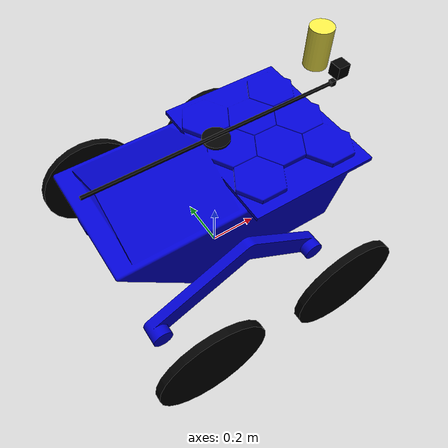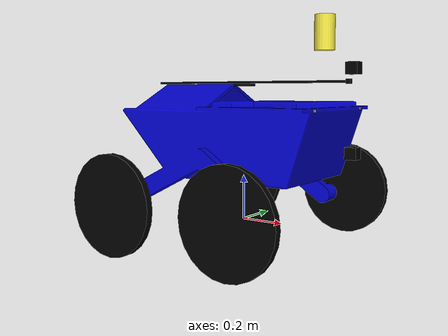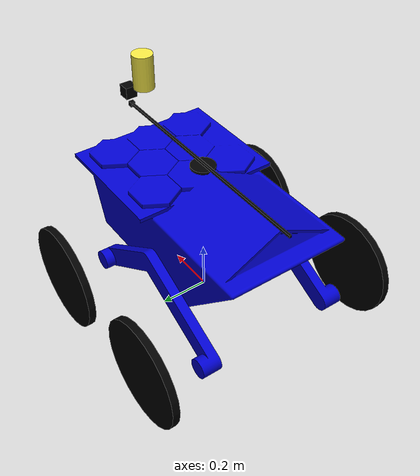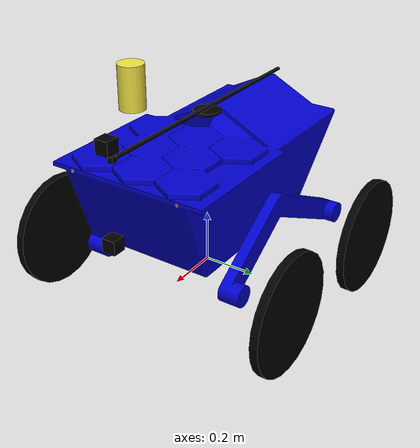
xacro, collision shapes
<?xml version="1.0"?>
<robot xmlns:xacro="http://www.ros.org/wiki/xacro" name="arctic_model" >
  <xacro:include filename="$(find hector_sensors_description)/urdf/sonar_sensor.urdf.xacro"/>
  <xacro:property name="base_len" value="1.039"/>
  <xacro:property name="base_shift" value="0.20"/>
  <xacro:property name="base_w" value="0.8"/>
  <xacro:property name="base_h" value="0.685"/>
  <xacro:property name="base_r" value="0.2"/>
  <xacro:property name="wheel_r" value="0.22"/>
  <xacro:property name="wheel_h" value="0.03"/>
  <xacro:property name="wheel_dist_y" value="1."/>
  <xacro:property name="wheel_dist_x" value="0.6"/>
  <xacro:property name="dh" value="0.14"/>
  <xacro:property name="dl" value="0.553"/>
  <xacro:property name="sonar_shift" value="0.05"/>
  <xacro:property name="sonar_dist" value="0.42"/>
  <xacro:property name="wheel_rho" value="100"/>
  <xacro:property name="robot_rho" value="1000"/>
  <xacro:property name="wheel_friction" value="0.3"/>
  <xacro:property name="cam_pan_h" value="0.3"/>
  <gazebo reference="base_link">
    <mu1>0</mu1>
    <mu2>0</mu2>
  </gazebo>

  <link name="base_link" />

  <joint name="zero_joint" type="fixed">
    <parent link="base_link"/>
    <child link="body_link"/>
     <origin xyz="${base_len/2 - dl} 0 ${base_h/2 - dh}" rpy="0 0 0"/>
  </joint>
  <link name="body_link">
    <visual>
      <geometry>
        <mesh filename="file://$(find arctic_model_description)/meshes/PlatformV3.dae"/>
      </geometry>
      <origin xyz="0 0 0" rpy="0 0 ${pi/2}"/>

      <material name="blue">
	    <color rgba="0 0 .8 1"/>
      </material>

    </visual>
    <collision>
      <geometry>
        <mesh filename="file://$(find arctic_model_description)/meshes/PlatformV3.dae"/>
      </geometry>
      <origin xyz="0 0 0" rpy="0 0 ${pi/2}"/>
    </collision>
    <inertial>
      <mass value="${robot_rho*base_len*base_w*base_h}"/>
      <inertia ixx="${1/12*robot_rho*base_len*base_w*base_h*(base_w*base_w + base_h*base_h)}" ixy="0.0" ixz="0.0" iyy="${1/12*robot_rho*base_len*base_w*base_h*(base_len*base_len + base_h*base_h)}" iyz="0.0" izz="${1/12*robot_rho*base_len*base_w*base_h*(base_w*base_w + base_len*base_len)}"/>
    </inertial>
  </link>

  <gazebo reference="body_link">
     <material>Gazebo/Blue</material>
     <mu1>0</mu1>
     <mu2>0</mu2>
  </gazebo>

  <xacro:macro name="wheel" params="wh_name base_name dx dy">
    <link name="${wh_name}_link">
      <visual>
        <geometry>
          <cylinder length="${2*wheel_h}" radius="${wheel_r}"/>
        </geometry>
        <origin rpy="${pi/2} 0 0" xyz="0 0 0"/>
        <material name="black">
	  <color rgba="0 0 0 1"/>
        </material>
      </visual>
      <collision>
        <geometry>
          <cylinder length="${wheel_h}" radius="${wheel_r}"/>
        </geometry>
        <origin rpy="${pi/2} 0 0" xyz="0 0 0"/>
      </collision>
      <inertial>
        <mass value="${wheel_rho*pi*wheel_r*wheel_r*wheel_h}"/>
        <inertia izz="${0.25*wheel_rho*pi*wheel_r*wheel_r*wheel_h*wheel_r*wheel_r + 1/12*wheel_rho*pi*wheel_r*wheel_r*wheel_h*wheel_h*wheel_h}" ixy="0.0" ixz="0.0" ixx="${0.25*wheel_rho*pi*wheel_r*wheel_r*wheel_h*wheel_r*wheel_r + 1/12*wheel_rho*pi*wheel_r*wheel_r*wheel_h*wheel_h*wheel_h}" iyz="0.0" iyy="${0.5*wheel_rho*pi*wheel_r*wheel_r*wheel_h*wheel_r*wheel_r}"/>
      </inertial>
    </link>
    <joint name="${wh_name}_j" type="continuous">
      <origin xyz="${dx} ${dy} -0.1" rpy="0 0 0"/>
      <parent link="${base_name}"/>
      <axis xyz="0 1 0"/>
      <child link="${wh_name}_link"/>
      <dynamics damping="${wheel_friction}"/>
    </joint>
    <gazebo reference="${wh_name}_link">
      <material>Gazebo/Black</material>
      <mu1>1</mu1>
      <dampingFactor>0.05</dampingFactor>
      <kp>20000000</kp>
      <kd>800000</kd>
    </gazebo>
  </xacro:macro>

  <xacro:wheel wh_name="lwheel" base_name="body_link" dx="${wheel_dist_x/2}" dy="${wheel_dist_y/2}"  />
  <xacro:wheel wh_name="rwheel" base_name="body_link" dx="${wheel_dist_x/2}" dy="${-wheel_dist_y/2}"  />
  <xacro:wheel wh_name="lwheel3" base_name="body_link" dx="${-wheel_dist_x/2}" dy="${wheel_dist_y/2}" />
  <xacro:wheel wh_name="rwheel3" base_name="body_link" dx="${-wheel_dist_x/2}" dy="${-wheel_dist_y/2}" />

  <xacro:macro name="sonar" params="sonar_name base_name dx dy">
    <xacro:sonar_sensor name='${sonar_name}' parent='${base_name}' ros_topic='/sonar' update_rate='5' min_range='0.01' max_range='5' field_of_view='${pi/12}' ray_count='1'>
      <origin xyz='${dx+0.25} ${dy} 0.305' rpy='0 0 0'/>
    </xacro:sonar_sensor>
  </xacro:macro>

  <xacro:sonar sonar_name="arctic_model_left_rf" base_name="body_link" dx="${base_shift+sonar_shift}" dy="${sonar_dist/2}" />
  <xacro:sonar sonar_name="arctic_model_right_rf" base_name="body_link" dx="${base_shift+sonar_shift}" dy="${-sonar_dist/2}" />

  <xacro:macro name="whtransmission" params="joint">
    <transmission name="${joint}_transm">
      <type>transmission_interface/SimpleTransmission</type>
      <joint name="${joint}">
        <hardwareInterface>hardware_interface/VelocityJointInterface</hardwareInterface>
      </joint>
      <actuator name="${joint}_motor">
        <mechanicalReduction>1</mechanicalReduction>
      </actuator>
    </transmission>
  </xacro:macro>

  <xacro:whtransmission joint="rwheel_j" />
  <xacro:whtransmission joint="lwheel_j" />
  <xacro:whtransmission joint="rwheel3_j" />
  <xacro:whtransmission joint="lwheel3_j" />

  <xacro:arg name="gpu" default="false"/>
  <xacro:property name="gpu" value="$(arg gpu)" />

  <!-- manipulator -->

  <link name="manip_base_link">
      <visual>
        <geometry>
          <cylinder length="0.01" radius="0.05"/>
        </geometry>
        <origin rpy="0 0 0" xyz="0 0 0"/>
        <material name="black">
	  <color rgba="0 0 0 1"/>
        </material>
      </visual>
      <collision>
        <geometry>
          <cylinder length="0.01" radius="0.05"/>
        </geometry>
        <origin rpy="0 0 0" xyz="0 0 0"/>
      </collision>
      <inertial>
        <mass value="0.01"/>
        <inertia izz="1e-4" ixy="0.0" ixz="0.0" ixx="1e-4" iyz="0.0" iyy="1e-4"/>
      </inertial>
    </link>
    <joint name="manip_base_link_j" type="continuous">
      <origin xyz="0 0 0.61" rpy="0 0 0"/>
      <parent link="base_link"/>
      <axis xyz="0 0 1"/>
      <child link="manip_base_link"/>
      <dynamics damping="${wheel_friction}"/>
      <limit effort="10" velocity="10.0" />
    </joint>
    <transmission name="manip_base_link_transm">
      <type>transmission_interface/SimpleTransmission</type>
      <joint name="manip_base_link_j">
        <hardwareInterface>hardware_interface/PositionJointInterface</hardwareInterface>
      </joint>
      <actuator name="manip_base_link_motor">
        <mechanicalReduction>1</mechanicalReduction>
      </actuator>
    </transmission>

     <link name="manip_stock_link">
      <visual>
        <geometry>
          <box size="1 0.01 0.01"/>
        </geometry>
        <origin rpy="0 0 0" xyz="0 0 0"/>
        <material name="black">
	  <color rgba="0 0 0 1"/>
        </material>
      </visual>
      <collision>
        <geometry>
          <box size="1 0.01 0.01"/>
        </geometry>
        <origin rpy="0 0 0" xyz="0 0 0"/>
      </collision>
      <inertial>
        <mass value="0.01"/>
        <inertia izz="1e-4" ixy="0.0" ixz="0.0" ixx="1e-4" iyz="0.0" iyy="1e-4"/>
      </inertial>
    </link>
    <joint name="manip_stock_link_j" type="prismatic">
      <origin xyz="0 0 0.012" rpy="0 0 0"/>
      <parent link="manip_base_link"/>
      <axis xyz="1 0 0"/>
      <child link="manip_stock_link"/>
      <dynamics damping="${wheel_friction}"/>
      <limit effort="10" velocity="10.0" lower="-0.01" upper="0.49" />
    </joint>
    <transmission name="manip_stock_link_transm">
      <type>transmission_interface/SimpleTransmission</type>
      <joint name="manip_stock_link_j">
        <hardwareInterface>hardware_interface/PositionJointInterface</hardwareInterface>
      </joint>
      <actuator name="manip_stock_link_motor">
        <mechanicalReduction>1</mechanicalReduction>
      </actuator>
    </transmission>

    <link name="manip_end_link">
      <visual>
        <geometry>
          <!--box size="0.02 0.02 0.02"/-->
          <mesh filename="file://$(find arctic_model_description)/meshes/manip_end.dae"/>
        </geometry>
        <origin rpy="0 0 0" xyz="0 0 0"/>
        <material name="black">
	  <color rgba="0 0 0 1"/>
        </material>
      </visual>
      <collision>
        <geometry>
          <box size="0.02 0.02 0.02"/>
        </geometry>
        <origin rpy="0 0 0" xyz="0 0 0"/>
      </collision>
      <inertial>
        <mass value="0.01"/>
        <inertia izz="1e-4" ixy="0.0" ixz="0.0" ixx="1e-4" iyz="0.0" iyy="1e-4"/>
      </inertial>
    </link>
    <joint name="manip_end_link_j" type="fixed">
      <origin xyz="0.51 0 0" rpy="0 0 0"/>
      <parent link="manip_stock_link"/>
      <axis xyz="1 0 0"/>
      <child link="manip_end_link"/>
    </joint>

  <!-- =============== LIDAR =================== -->
  <!-- LIDAR velodyne VLP-16 -->
  <!-- LIDAR velodyne HDL-32 -->
  <xacro:include filename="$(find velodyne_description)/urdf/HDL-32E.urdf.xacro"/>
  <xacro:HDL-32E parent="base_link" name="/default_robot/velodyne2" topic="velodyne_points2" hz="10" samples="220" gpu="${gpu}">
    <origin xyz="${base_shift*2} 0 0.75" rpy="0 0 0" />
  </xacro:HDL-32E>

  <!-- =============== CAMERAS =================== -->

  <link name="camera_link1">
    <visual>
      <geometry>
        <box size="0.05 0.05 0.05"/>
      </geometry>
      <origin rpy="0 0 0" xyz="0 0 0"/>
      <material name="black">
        <color rgba="0 0 0 1"/>
      </material>
    </visual>
    <collision>
      <geometry>
        <box size="0.05 0.05 0.05"/>
      </geometry>
      <origin rpy="0 0 0" xyz="0 0 0"/>
    </collision>
    <inertial>
      <mass value="0.001"/>
      <inertia ixx="1e-12" ixy="0.0" ixz="0.0" iyy="1e-12" iyz="0.0" izz="1e-12"/>
    </inertial>
  </link>

  <joint name="$camera_j1" type="fixed">
    <origin xyz="${base_shift+0.33} 0 ${base_h/2-0.01}" rpy="0 0 0"/>
    <parent link="base_link"/>
    <axis xyz="0 1 0"/>
    <child link="camera_link1"/>
  </joint>

  <gazebo reference="camera_link1">
    <material>Gazebo/Black</material>
    <sensor type="camera" name="camera1">
      <update_rate>30.0</update_rate>
      <camera name="head">
        <horizontal_fov>1.3962634</horizontal_fov>
        <image>
          <width>640</width>
          <height>480</height>
          <format>R8G8B8</format>
        </image>
        <clip>
          <near>0.02</near>
          <far>300</far>
        </clip>
        <noise>
          <type>gaussian</type>
          <!-- Noise is sampled independently per pixel on each frame.
               That pixel's noise value is added to each of its color
               channels, which at that point lie in the range [0,1]. -->
          <mean>0.0</mean>
          <stddev>0.007</stddev>
        </noise>
      </camera>
      <plugin name="camera_controller" filename="libgazebo_ros_camera.so">
        <alwaysOn>true</alwaysOn>
        <updateRate>0.0</updateRate>
        <cameraName>camera1</cameraName>
        <imageTopicName>image_raw</imageTopicName>
        <cameraInfoTopicName>camera_info</cameraInfoTopicName>
        <frameName>camera_link1</frameName>
        <hackBaseline>0.07</hackBaseline>
        <distortionK1>0.0</distortionK1>
        <distortionK2>0.0</distortionK2>
        <distortionK3>0.0</distortionK3>
        <distortionT1>0.0</distortionT1>
        <distortionT2>0.0</distortionT2>
      </plugin>
    </sensor>
  </gazebo>

  <link name="rotating_camera_mid_link">
    <inertial>
      <mass value="0.001"/>
      <inertia ixx="1e-12" ixy="0.0" ixz="0.0" iyy="1e-12" iyz="0.0" izz="1e-12"/>
    </inertial>
  </link>

  <joint name="rotating_camera_yaw_j" type="revolute">
    <origin xyz="${base_shift+0.33} 0 ${base_h-0.01}" rpy="0 0 0"/>
    <parent link="base_link"/>
    <axis xyz="0 0 1"/>
    <child link="rotating_camera_mid_link"/>
    <dynamics damping="${wheel_friction}"/>
    <limit lower="${-pi}" upper="${pi}" effort="1" velocity="5"/>
  </joint>

  <transmission name="rotating_camera_yaw_transm">
    <type>transmission_interface/SimpleTransmission</type>
    <joint name="rotating_camera_yaw_j">
      <hardwareInterface>hardware_interface/PositionJointInterface</hardwareInterface>
    </joint>
    <actuator name="rotating_camera_yaw_motor">
      <mechanicalReduction>1</mechanicalReduction>
    </actuator>
  </transmission>

  <link name="rotating_camera_link">
    <visual>
      <geometry>
        <box size="0.05 0.05 0.05"/>
      </geometry>
      <origin rpy="0 0 0" xyz="0 0 0"/>
      <material name="black">
        <color rgba="0 0 0 1"/>
      </material>
    </visual>
    <collision>
      <geometry>
        <box size="0.05 0.05 0.05"/>
      </geometry>
      <origin rpy="0 0 0" xyz="0 0 0"/>
    </collision>
    <inertial>
      <mass value="0.001"/>
      <inertia ixx="1e-12" ixy="0.0" ixz="0.0" iyy="1e-12" iyz="0.0" izz="1e-12"/>
    </inertial>
  </link>

  <joint name="rotating_camera_pitch_j" type="revolute">
    <origin xyz="0 0 0" rpy="0 0 0"/>
    <parent link="rotating_camera_mid_link"/>
    <axis xyz="0 1 0"/>
    <child link="rotating_camera_link"/>
    <dynamics damping="${wheel_friction}"/>
    <limit lower="${-pi}" upper="${pi}" effort="1" velocity="5"/>
  </joint>

  <transmission name="rotating_camera_pitch_transm">
    <type>transmission_interface/SimpleTransmission</type>
    <joint name="rotating_camera_pitch_j">
      <hardwareInterface>hardware_interface/PositionJointInterface</hardwareInterface>
    </joint>
    <actuator name="rotating_camera_pitch_motor">
      <mechanicalReduction>1</mechanicalReduction>
    </actuator>
  </transmission>

  <gazebo reference="rotating_camera_link">
    <material>Gazebo/Black</material>
    <sensor type="camera" name="rotating_camera">
      <update_rate>30.0</update_rate>
      <camera name="head">
        <horizontal_fov>1.3962634</horizontal_fov>
        <image>
          <width>640</width>
          <height>480</height>
          <format>R8G8B8</format>
        </image>
        <clip>
          <near>0.02</near>
          <far>300</far>
        </clip>
        <noise>
          <type>gaussian</type>
          <!-- Noise is sampled independently per pixel on each frame.
               That pixel's noise value is added to each of its color
               channels, which at that point lie in the range [0,1]. -->
          <mean>0.0</mean>
          <stddev>0.007</stddev>
        </noise>
      </camera>
      <plugin name="camera_controller" filename="libgazebo_ros_camera.so">
        <alwaysOn>true</alwaysOn>
        <updateRate>0.0</updateRate>
        <cameraName>rotating_camera</cameraName>
        <imageTopicName>image_raw</imageTopicName>
        <cameraInfoTopicName>camera_info</cameraInfoTopicName>
        <frameName>rotating_camera_link</frameName>
        <hackBaseline>0.07</hackBaseline>
        <distortionK1>0.0</distortionK1>
        <distortionK2>0.0</distortionK2>
        <distortionK3>0.0</distortionK3>
        <distortionT1>0.0</distortionT1>
        <distortionT2>0.0</distortionT2>
      </plugin>
    </sensor>
  </gazebo>

  <gazebo>
    <plugin name="gazebo_ros_control" filename="libgazebo_ros_control.so">
        <robotSimType>gazebo_ros_control/DefaultRobotHWSim</robotSimType>
        <legacyModeNS>true</legacyModeNS>
        <!-- Control period is recommended to be the same as the world simulation period -->
        <controlPeriod>0.001</controlPeriod>
    </plugin>
  </gazebo>

  <gazebo>
    <plugin name="p3d_base_controller" filename="libgazebo_ros_p3d.so">
      <alwaysOn>true</alwaysOn>
      <updateRate>10.0</updateRate>
      <bodyName>base_link</bodyName>
      <topicName>gazebo_ground_truth_odom</topicName>
      <gaussianNoise>0.01</gaussianNoise>
      <frameName>map</frameName>
      <xyzOffsets>0 0 0</xyzOffsets>
      <rpyOffsets>0 0 0</rpyOffsets>
    </plugin>
  </gazebo>
</robot>

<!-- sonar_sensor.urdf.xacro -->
<robot xmlns:xacro="http://www.ros.org/wiki/xacro">
  <xacro:macro name="sonar_sensor" params="name parent *origin ros_topic update_rate min_range max_range field_of_view ray_count">
    <joint name="${name}_joint" type="fixed">
      <xacro:insert_block name="origin" />
      <parent link="${parent}"/>
      <child link="${name}_link"/>
    </joint>

    <link name="${name}_link">
      <inertial>
        <mass value="0.001" />
        <origin xyz="0 0 0" rpy="0 0 0" />
        <inertia ixx="0.000000017" ixy="0" ixz="0" iyy="0.000000017" iyz="0" izz="0.000000017" />
      </inertial>
      <visual>
        <origin xyz="0 0 0" rpy="0 0 0" />
        <geometry>
          <mesh filename="package://hector_sensors_description/meshes/sonar_sensor/max_sonar_ez4.dae"/>
        </geometry>
      </visual>
      <collision>
        <origin xyz="0 0 0" rpy="0 0 0" />
        <geometry>
          <box size="0.01 0.01 0.01" />
        </geometry>
      </collision>
    </link>

    <gazebo reference="${name}_link">
      <sensor type="ray" name="${name}">
        <always_on>true</always_on>
        <update_rate>${update_rate}</update_rate>
        <pose>0 0 0 0 0 0</pose>
        <visualize>false</visualize>
        <ray>
          <scan>
            <horizontal>
              <samples>${ray_count}</samples>
              <resolution>1</resolution>
              <min_angle>-${field_of_view/2}</min_angle>
              <max_angle> ${field_of_view/2}</max_angle>
            </horizontal>
            <vertical>
              <samples>${ray_count}</samples>
              <resolution>1</resolution>
              <min_angle>-${field_of_view/2}</min_angle>
              <max_angle> ${field_of_view/2}</max_angle>
            </vertical>
          </scan>
          <range>
            <min>${min_range}</min>
            <max>${max_range}</max>
            <resolution>0.01</resolution>
          </range>
        </ray>

        <plugin name="gazebo_ros_${name}_controller" filename="libhector_gazebo_ros_sonar.so">
          <gaussianNoise>0.005</gaussianNoise>
          <topicName>${ros_topic}</topicName>
          <frameId>${name}_link</frameId>
        </plugin>
      </sensor>
    </gazebo>
  </xacro:macro>
</robot>

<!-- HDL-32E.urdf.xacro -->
<robot xmlns:xacro="http://www.ros.org/wiki/xacro" name="HDL-32E">
  <xacro:property name="M_PI" value="3.1415926535897931" />
  <xacro:macro name="HDL-32E" params="parent name topic *origin">

    <joint name="${name}_base_mount_joint" type="fixed">
      <xacro:insert_block name="origin" />
      <parent link="${parent}"/>
      <child link="${name}_base_link"/>
    </joint>

    <link name="${name}_base_link">
      <inertial>
        <mass value="0.1"/>
        <origin xyz="0 0 0"/>
        <inertia ixx="0.1" ixy="0" ixz="0" iyy="0.1" iyz="0" izz="0.1"/>
      </inertial>
      <visual>
        <geometry>
          <mesh filename="package://hector_sensors_description/meshes/velodyne/HDL32E_base.dae" />
        </geometry>
      </visual>
      <collision>
        <origin rpy="0 0 0" xyz="0 0 0.07212"/>
        <geometry>
          <cylinder radius="0.04267" length="0.14424"/>
        </geometry>
      </collision>
    </link>

    <joint name="${name}_base_scan_joint" type="fixed" >
      <origin xyz="0 0 0.09081" rpy="0 0 0" />
      <parent link="${name}_base_link" />
      <child link="${name}"/>
    </joint>

    <link name="${name}">
      <inertial>
        <mass value="0.1"/>
        <origin xyz="0 0 0"/>
        <inertia ixx="0.1" ixy="0" ixz="0" iyy="0.1" iyz="0" izz="0.1"/>
      </inertial>
      <visual>
        <origin xyz="0 0 -0.09081" rpy="0 0 0" />
        <geometry>
          <mesh filename="package://hector_sensors_description/meshes/velodyne/HDL32E_scan.dae" />
        </geometry>
      </visual>
    </link>

    <!-- Gazebo requires the velodyne_gazebo_plugins package -->
    <gazebo reference="${name}">
      <sensor type="ray" name="${name}-HDL32E">
        <pose>0 0 0 0 0 0</pose>
        <visualize>false</visualize>
        <update_rate>10</update_rate>
        <ray>
          <scan>
            <horizontal>
              <samples>2187</samples> <!-- Change this to 500 if gazebo keeps timing out -->
              <resolution>1</resolution>
              <min_angle>-${M_PI}</min_angle>
              <max_angle> ${M_PI}</max_angle>
            </horizontal>
            <vertical>
              <samples>32</samples>
              <resolution>1</resolution>
              <min_angle>-${30.67*M_PI/180.0}</min_angle>
              <max_angle> ${10.67*M_PI/180.0}</max_angle>
            </vertical>
          </scan>
          <range>
            <min>0.055</min>
            <max>140.0</max>
            <resolution>0.001</resolution>
          </range>
          <noise>
            <type>gaussian</type>
            <mean>0.0</mean>
            <stddev>0.0</stddev>
          </noise>
        </ray>
        <plugin name="gazebo_ros_laser_controller" filename="libgazebo_ros_block_laser.so">
          <topicName>${topic}</topicName>
          <frameName>/${name}</frameName>
          <min_range>0.9</min_range>
          <max_range>130.0</max_range>
          <gaussianNoise>0.008</gaussianNoise>
        </plugin>
      </sensor>
    </gazebo>

  </xacro:macro>
</robot>
